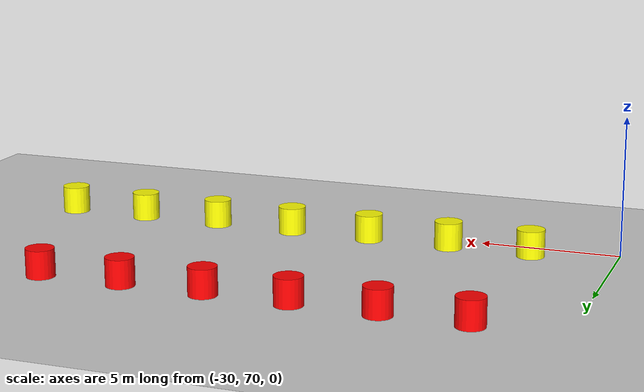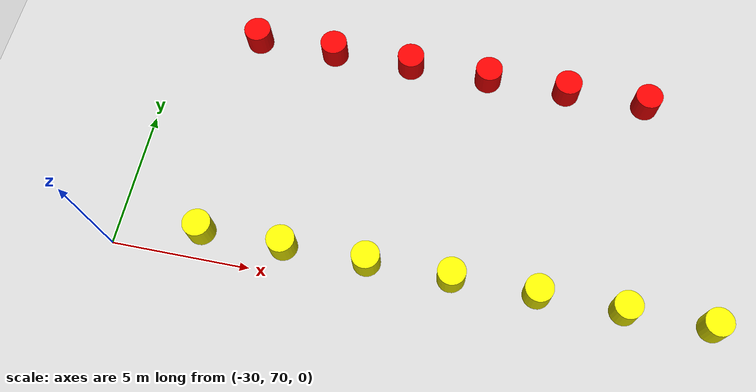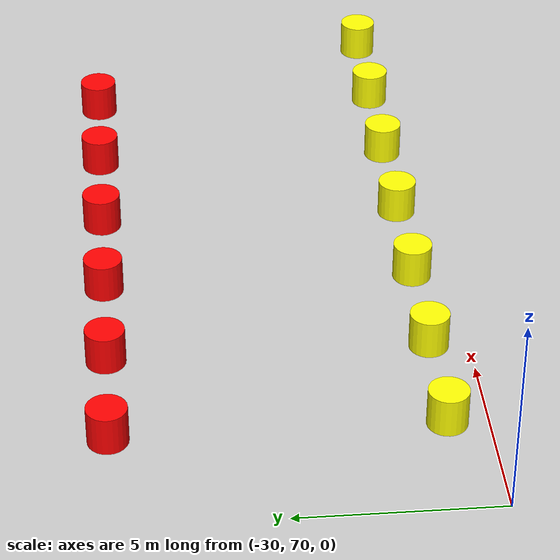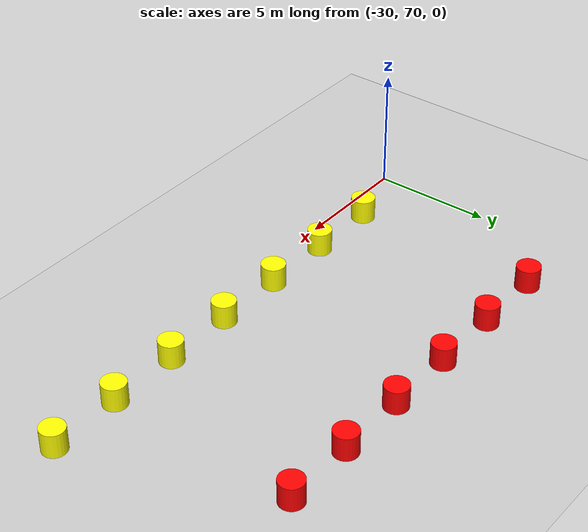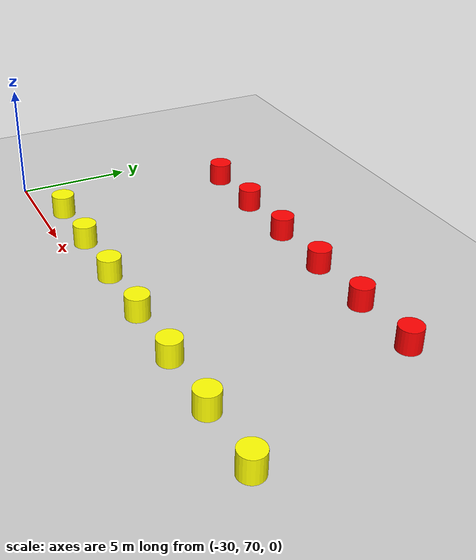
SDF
<sdf version="1.9">
 <world name="empty">
  <model name="ground_plane">
   <static>true</static>
   <link name="link">
    <collision name="collision">
     <geometry><plane><normal>0 0 1</normal><size>1000 1000</size></plane></geometry>
    </collision>
    <visual name="visual">
     <geometry><plane><normal>0 0 1</normal><size>1000 1000</size></plane></geometry>
     <material>
      <ambient>0.8 0.8 0.8 1</ambient>
      <diffuse>0.8 0.8 0.8 1</diffuse>
      <specular>0.8 0.8 0.8 1</specular>
     </material>
    </visual>
    <inertial>
     <mass>1</mass>
     <inertia><ixx>1</ixx><ixy>0</ixy><ixz>0</ixz><iyy>1</iyy><iyz>0</iyz><izz>1</izz></inertia>
    </inertial>
   </link>
  </model>
  <model name="red_cone_45">
   <pose>-27.000000000000004 79.0 0.5 0 -0 0</pose>
   <link name="cylinder_link">
    <inertial>
     <inertia>
      <ixx>0.14580000000000001</ixx>
      <ixy>0</ixy>
      <ixz>0</ixz>
      <iyy>0.14580000000000001</iyy>
      <iyz>0</iyz>
      <izz>0.125</izz>
     </inertia>
     <mass>1</mass>
    </inertial>
    <collision name="cylinder_collision">
     <geometry><cylinder><radius>0.5</radius><length>1</length></cylinder></geometry>
    </collision>
    <visual name="cylinder_visual">
     <geometry><cylinder><radius>0.5</radius><length>1</length></cylinder></geometry>
     <material><ambient>1 0 0 1</ambient><diffuse>1 0 0 1</diffuse><specular>1 1 1 1</specular></material>
    </visual>
   </link>
   <static>false</static>
  </model>
  <model name="red_cone_46">
   <pose>-24.000000000000004 79.0 0.5 0 -0 0</pose>
   <link name="cylinder_link">
    <inertial>
     <inertia>
      <ixx>0.14580000000000001</ixx>
      <ixy>0</ixy>
      <ixz>0</ixz>
      <iyy>0.14580000000000001</iyy>
      <iyz>0</iyz>
      <izz>0.125</izz>
     </inertia>
     <mass>1</mass>
    </inertial>
    <collision name="cylinder_collision">
     <geometry><cylinder><radius>0.5</radius><length>1</length></cylinder></geometry>
    </collision>
    <visual name="cylinder_visual">
     <geometry><cylinder><radius>0.5</radius><length>1</length></cylinder></geometry>
     <material><ambient>1 0 0 1</ambient><diffuse>1 0 0 1</diffuse><specular>1 1 1 1</specular></material>
    </visual>
   </link>
   <static>false</static>
  </model>
  <model name="red_cone_47">
   <pose>-21.000000000000004 79.0 0.5 0 -0 0</pose>
   <link name="cylinder_link">
    <inertial>
     <inertia>
      <ixx>0.14580000000000001</ixx>
      <ixy>0</ixy>
      <ixz>0</ixz>
      <iyy>0.14580000000000001</iyy>
      <iyz>0</iyz>
      <izz>0.125</izz>
     </inertia>
     <mass>1</mass>
    </inertial>
    <collision name="cylinder_collision">
     <geometry><cylinder><radius>0.5</radius><length>1</length></cylinder></geometry>
    </collision>
    <visual name="cylinder_visual">
     <geometry><cylinder><radius>0.5</radius><length>1</length></cylinder></geometry>
     <material><ambient>1 0 0 1</ambient><diffuse>1 0 0 1</diffuse><specular>1 1 1 1</specular></material>
    </visual>
   </link>
   <static>false</static>
  </model>
  <model name="red_cone_48">
   <pose>-18.000000000000004 79.0 0.5 0 -0 0</pose>
   <link name="cylinder_link">
    <inertial>
     <inertia>
      <ixx>0.14580000000000001</ixx>
      <ixy>0</ixy>
      <ixz>0</ixz>
      <iyy>0.14580000000000001</iyy>
      <iyz>0</iyz>
      <izz>0.125</izz>
     </inertia>
     <mass>1</mass>
    </inertial>
    <collision name="cylinder_collision">
     <geometry><cylinder><radius>0.5</radius><length>1</length></cylinder></geometry>
    </collision>
    <visual name="cylinder_visual">
     <geometry><cylinder><radius>0.5</radius><length>1</length></cylinder></geometry>
     <material><ambient>1 0 0 1</ambient><diffuse>1 0 0 1</diffuse><specular>1 1 1 1</specular></material>
    </visual>
   </link>
   <static>false</static>
  </model>
  <model name="red_cone_49">
   <pose>-15.000000000000004 79.0 0.5 0 -0 0</pose>
   <link name="cylinder_link">
    <inertial>
     <inertia>
      <ixx>0.14580000000000001</ixx>
      <ixy>0</ixy>
      <ixz>0</ixz>
      <iyy>0.14580000000000001</iyy>
      <iyz>0</iyz>
      <izz>0.125</izz>
     </inertia>
     <mass>1</mass>
    </inertial>
    <collision name="cylinder_collision">
     <geometry><cylinder><radius>0.5</radius><length>1</length></cylinder></geometry>
    </collision>
    <visual name="cylinder_visual">
     <geometry><cylinder><radius>0.5</radius><length>1</length></cylinder></geometry>
     <material><ambient>1 0 0 1</ambient><diffuse>1 0 0 1</diffuse><specular>1 1 1 1</specular></material>
    </visual>
   </link>
   <static>false</static>
  </model>
  <model name="red_cone_50">
   <pose>-12.000000000000004 79.0 0.5 0 -0 0</pose>
   <link name="cylinder_link">
    <inertial>
     <inertia>
      <ixx>0.14580000000000001</ixx>
      <ixy>0</ixy>
      <ixz>0</ixz>
      <iyy>0.14580000000000001</iyy>
      <iyz>0</iyz>
      <izz>0.125</izz>
     </inertia>
     <mass>1</mass>
    </inertial>
    <collision name="cylinder_collision">
     <geometry><cylinder><radius>0.5</radius><length>1</length></cylinder></geometry>
    </collision>
    <visual name="cylinder_visual">
     <geometry><cylinder><radius>0.5</radius><length>1</length></cylinder></geometry>
     <material><ambient>1 0 0 1</ambient><diffuse>1 0 0 1</diffuse><specular>1 1 1 1</specular></material>
    </visual>
   </link>
   <static>false</static>
  </model>
  <model name="yellow_cone_41">
   <pose>-27.000000000000004 71.0 0.5 0 -0 0</pose>
   <link name="cylinder_link">
    <inertial>
     <inertia>
      <ixx>0.14580000000000001</ixx>
      <ixy>0</ixy>
      <ixz>0</ixz>
      <iyy>0.14580000000000001</iyy>
      <iyz>0</iyz>
      <izz>0.125</izz>
     </inertia>
     <mass>1</mass>
    </inertial>
    <collision name="cylinder_collision">
     <geometry><cylinder><radius>0.5</radius><length>1</length></cylinder></geometry>
    </collision>
    <visual name="cylinder_visual">
     <geometry><cylinder><radius>0.5</radius><length>1</length></cylinder></geometry>
     <material><ambient>1 1 0 1</ambient><diffuse>1 1 0 1</diffuse><specular>1 1 1 1</specular></material>
    </visual>
   </link>
   <static>false</static>
  </model>
  <model name="yellow_cone_42">
   <pose>-24.000000000000004 71.0 0.5 0 -0 0</pose>
   <link name="cylinder_link">
    <inertial>
     <inertia>
      <ixx>0.14580000000000001</ixx>
      <ixy>0</ixy>
      <ixz>0</ixz>
      <iyy>0.14580000000000001</iyy>
      <iyz>0</iyz>
      <izz>0.125</izz>
     </inertia>
     <mass>1</mass>
    </inertial>
    <collision name="cylinder_collision">
     <geometry><cylinder><radius>0.5</radius><length>1</length></cylinder></geometry>
    </collision>
    <visual name="cylinder_visual">
     <geometry><cylinder><radius>0.5</radius><length>1</length></cylinder></geometry>
     <material><ambient>1 1 0 1</ambient><diffuse>1 1 0 1</diffuse><specular>1 1 1 1</specular></material>
    </visual>
   </link>
   <static>false</static>
  </model>
  <model name="yellow_cone_43">
   <pose>-21.000000000000004 71.0 0.5 0 -0 0</pose>
   <link name="cylinder_link">
    <inertial>
     <inertia>
      <ixx>0.14580000000000001</ixx>
      <ixy>0</ixy>
      <ixz>0</ixz>
      <iyy>0.14580000000000001</iyy>
      <iyz>0</iyz>
      <izz>0.125</izz>
     </inertia>
     <mass>1</mass>
    </inertial>
    <collision name="cylinder_collision">
     <geometry><cylinder><radius>0.5</radius><length>1</length></cylinder></geometry>
    </collision>
    <visual name="cylinder_visual">
     <geometry><cylinder><radius>0.5</radius><length>1</length></cylinder></geometry>
     <material><ambient>1 1 0 1</ambient><diffuse>1 1 0 1</diffuse><specular>1 1 1 1</specular></material>
    </visual>
   </link>
   <static>false</static>
  </model>
  <model name="yellow_cone_44">
   <pose>-18.000000000000004 71.0 0.5 0 -0 0</pose>
   <link name="cylinder_link">
    <inertial>
     <inertia>
      <ixx>0.14580000000000001</ixx>
      <ixy>0</ixy>
      <ixz>0</ixz>
      <iyy>0.14580000000000001</iyy>
      <iyz>0</iyz>
      <izz>0.125</izz>
     </inertia>
     <mass>1</mass>
    </inertial>
    <collision name="cylinder_collision">
     <geometry><cylinder><radius>0.5</radius><length>1</length></cylinder></geometry>
    </collision>
    <visual name="cylinder_visual">
     <geometry><cylinder><radius>0.5</radius><length>1</length></cylinder></geometry>
     <material><ambient>1 1 0 1</ambient><diffuse>1 1 0 1</diffuse><specular>1 1 1 1</specular></material>
    </visual>
   </link>
   <static>false</static>
  </model>
  <model name="yellow_cone_45">
   <pose>-15.000000000000004 71.0 0.5 0 -0 0</pose>
   <link name="cylinder_link">
    <inertial>
     <inertia>
      <ixx>0.14580000000000001</ixx>
      <ixy>0</ixy>
      <ixz>0</ixz>
      <iyy>0.14580000000000001</iyy>
      <iyz>0</iyz>
      <izz>0.125</izz>
     </inertia>
     <mass>1</mass>
    </inertial>
    <collision name="cylinder_collision">
     <geometry><cylinder><radius>0.5</radius><length>1</length></cylinder></geometry>
    </collision>
    <visual name="cylinder_visual">
     <geometry><cylinder><radius>0.5</radius><length>1</length></cylinder></geometry>
     <material><ambient>1 1 0 1</ambient><diffuse>1 1 0 1</diffuse><specular>1 1 1 1</specular></material>
    </visual>
   </link>
   <static>false</static>
  </model>
  <model name="yellow_cone_46">
   <pose>-12.000000000000004 71.0 0.5 0 -0 0</pose>
   <link name="cylinder_link">
    <inertial>
     <inertia>
      <ixx>0.14580000000000001</ixx>
      <ixy>0</ixy>
      <ixz>0</ixz>
      <iyy>0.14580000000000001</iyy>
      <iyz>0</iyz>
      <izz>0.125</izz>
     </inertia>
     <mass>1</mass>
    </inertial>
    <collision name="cylinder_collision">
     <geometry><cylinder><radius>0.5</radius><length>1</length></cylinder></geometry>
    </collision>
    <visual name="cylinder_visual">
     <geometry><cylinder><radius>0.5</radius><length>1</length></cylinder></geometry>
     <material><ambient>1 1 0 1</ambient><diffuse>1 1 0 1</diffuse><specular>1 1 1 1</specular></material>
    </visual>
   </link>
   <static>false</static>
  </model>
  <model name="yellow_cone_47">
   <pose>-9.000000000000004 71.0 0.5 0 -0 0</pose>
   <link name="cylinder_link">
    <inertial>
     <inertia>
      <ixx>0.14580000000000001</ixx>
      <ixy>0</ixy>
      <ixz>0</ixz>
      <iyy>0.14580000000000001</iyy>
      <iyz>0</iyz>
      <izz>0.125</izz>
     </inertia>
     <mass>1</mass>
    </inertial>
    <collision name="cylinder_collision">
     <geometry><cylinder><radius>0.5</radius><length>1</length></cylinder></geometry>
    </collision>
    <visual name="cylinder_visual">
     <geometry><cylinder><radius>0.5</radius><length>1</length></cylinder></geometry>
     <material><ambient>1 1 0 1</ambient><diffuse>1 1 0 1</diffuse><specular>1 1 1 1</specular></material>
    </visual>
   </link>
   <static>false</static>
  </model>
 </world>
</sdf>
